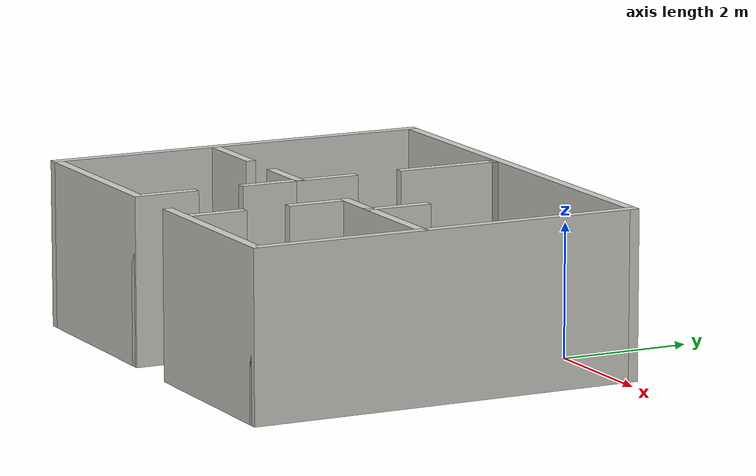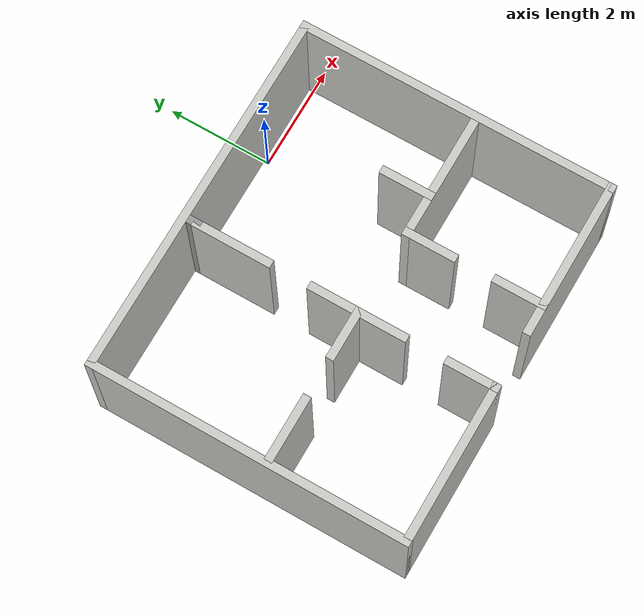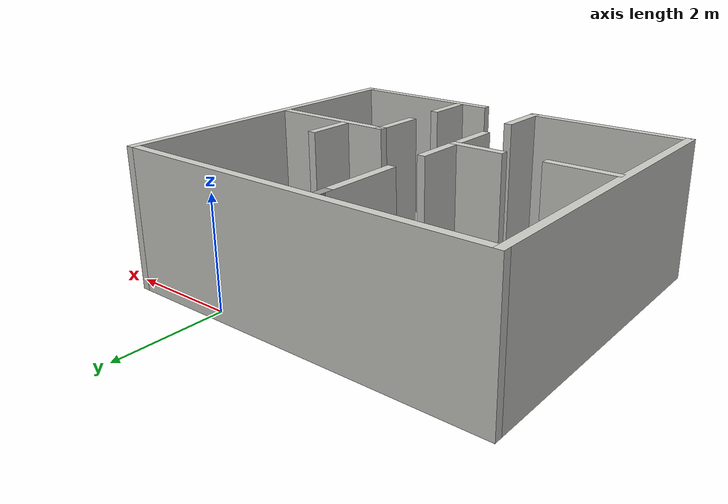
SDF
<?xml version='1.0'?>
<sdf version='1.7'>
  <model name='small_WH'>
    <pose>-1.76525 -2.76682 0 0 -0 0</pose>
    <link name='Wall_0'>
      <collision name='Wall_0_Collision'>
        <geometry>
          <box>
            <size>3 0.15 2.5</size>
          </box>
        </geometry>
        <pose>0 0 1.25 0 -0 0</pose>
      </collision>
      <visual name='Wall_0_Visual'>
        <pose>0 0 1.25 0 -0 0</pose>
        <geometry>
          <box>
            <size>3 0.15 2.5</size>
          </box>
        </geometry>
        <material>
          <script>
            <uri>file://media/materials/scripts/gazebo.material</uri>
            <name>Gazebo/CeilingTiled</name>
          </script>
          <ambient>1 0.764706 0.305882 1</ambient>
        </material>
        <meta>
          <layer>0</layer>
        </meta>
      </visual>
      <pose>-1.95 -2.925 0 0 -0 0</pose>
    </link>
    <link name='Wall_11'>
      <collision name='Wall_11_Collision'>
        <geometry>
          <box>
            <size>1 0.15 2.5</size>
          </box>
        </geometry>
        <pose>0 0 1.25 0 -0 0</pose>
      </collision>
      <visual name='Wall_11_Visual'>
        <pose>0 0 1.25 0 -0 0</pose>
        <geometry>
          <box>
            <size>1 0.15 2.5</size>
          </box>
        </geometry>
        <material>
          <script>
            <uri>file://media/materials/scripts/gazebo.material</uri>
            <name>Gazebo/CeilingTiled</name>
          </script>
          <ambient>1 0.764706 0.305882 1</ambient>
        </material>
        <meta>
          <layer>0</layer>
        </meta>
      </visual>
      <pose>-0.525 -0.8 0 0 -0 1.5708</pose>
    </link>
    <link name='Wall_12'>
      <collision name='Wall_12_Collision'>
        <geometry>
          <box>
            <size>1 0.15 2.5</size>
          </box>
        </geometry>
        <pose>0 0 1.25 0 -0 0</pose>
      </collision>
      <visual name='Wall_12_Visual'>
        <pose>0 0 1.25 0 -0 0</pose>
        <geometry>
          <box>
            <size>1 0.15 2.5</size>
          </box>
        </geometry>
        <material>
          <script>
            <uri>file://media/materials/scripts/gazebo.material</uri>
            <name>Gazebo/CeilingTiled</name>
          </script>
          <ambient>1 0.764706 0.305882 1</ambient>
        </material>
        <meta>
          <layer>0</layer>
        </meta>
      </visual>
      <pose>-0.95 -0.375 0 0 -0 3.14159</pose>
    </link>
    <link name='Wall_14'>
      <collision name='Wall_14_Collision'>
        <geometry>
          <box>
            <size>1.25 0.15 2.5</size>
          </box>
        </geometry>
        <pose>0 0 1.25 0 -0 0</pose>
      </collision>
      <visual name='Wall_14_Visual'>
        <pose>0 0 1.25 0 -0 0</pose>
        <geometry>
          <box>
            <size>1.25 0.15 2.5</size>
          </box>
        </geometry>
        <material>
          <script>
            <uri>file://media/materials/scripts/gazebo.material</uri>
            <name>Gazebo/CeilingTiled</name>
          </script>
          <ambient>1 0.764706 0.305882 1</ambient>
        </material>
        <meta>
          <layer>0</layer>
        </meta>
      </visual>
      <pose>-2.775 -0.375 0 0 -0 3.14159</pose>
    </link>
    <link name='Wall_16'>
      <collision name='Wall_16_Collision'>
        <geometry>
          <box>
            <size>1 0.15 2.5</size>
          </box>
        </geometry>
        <pose>0 0 1.25 0 -0 0</pose>
      </collision>
      <visual name='Wall_16_Visual'>
        <pose>0 0 1.25 0 -0 0</pose>
        <geometry>
          <box>
            <size>1 0.15 2.5</size>
          </box>
        </geometry>
        <material>
          <script>
            <uri>file://media/materials/scripts/gazebo.material</uri>
            <name>Gazebo/CeilingTiled</name>
          </script>
          <ambient>1 0.764706 0.305882 1</ambient>
        </material>
        <meta>
          <layer>0</layer>
        </meta>
      </visual>
      <pose>-0.525 0.05 0 0 -0 1.5708</pose>
    </link>
    <link name='Wall_18'>
      <collision name='Wall_18_Collision'>
        <geometry>
          <box>
            <size>1.5 0.15 2.5</size>
          </box>
        </geometry>
        <pose>0 0 1.25 0 -0 0</pose>
      </collision>
      <visual name='Wall_18_Visual'>
        <pose>0 0 1.25 0 -0 0</pose>
        <geometry>
          <box>
            <size>1.5 0.15 2.5</size>
          </box>
        </geometry>
        <material>
          <script>
            <uri>file://media/materials/scripts/gazebo.material</uri>
            <name>Gazebo/CeilingTiled</name>
          </script>
          <ambient>1 0.764706 0.305882 1</ambient>
        </material>
        <meta>
          <layer>0</layer>
        </meta>
      </visual>
      <pose>-0.525 2 0 0 -0 1.5708</pose>
    </link>
    <link name='Wall_19'>
      <collision name='Wall_19_Collision'>
        <geometry>
          <box>
            <size>0.25 0.15 2.5</size>
          </box>
        </geometry>
        <pose>0 0 1.25 0 -0 0</pose>
      </collision>
      <visual name='Wall_19_Visual'>
        <pose>0 0 1.25 0 -0 0</pose>
        <geometry>
          <box>
            <size>0.25 0.15 2.5</size>
          </box>
        </geometry>
        <material>
          <script>
            <uri>file://media/materials/scripts/gazebo.material</uri>
            <name>Gazebo/Grey</name>
          </script>
          <ambient>1 1 1 1</ambient>
        </material>
        <meta>
          <layer>0</layer>
        </meta>
      </visual>
      <pose>-0.525 2.725 0 0 -0 1.5708</pose>
    </link>
    <link name='Wall_2'>
      <collision name='Wall_2_Collision'>
        <geometry>
          <box>
            <size>3 0.15 2.5</size>
          </box>
        </geometry>
        <pose>0 0 1.25 0 -0 0</pose>
      </collision>
      <visual name='Wall_2_Visual'>
        <pose>0 0 1.25 0 -0 0</pose>
        <geometry>
          <box>
            <size>3 0.15 2.5</size>
          </box>
        </geometry>
        <material>
          <script>
            <uri>file://media/materials/scripts/gazebo.material</uri>
            <name>Gazebo/CeilingTiled</name>
          </script>
          <ambient>1 0.764706 0.305882 1</ambient>
        </material>
        <meta>
          <layer>0</layer>
        </meta>
      </visual>
      <pose>2 -2.925 0 0 -0 0</pose>
    </link>
    <link name='Wall_21'>
      <collision name='Wall_21_Collision'>
        <geometry>
          <box>
            <size>2.5 0.15 2.5</size>
          </box>
        </geometry>
        <pose>0 0 1.25 0 -0 0</pose>
      </collision>
      <visual name='Wall_21_Visual'>
        <pose>0 0 1.25 0 -0 0</pose>
        <geometry>
          <box>
            <size>2.5 0.15 2.5</size>
          </box>
        </geometry>
        <material>
          <script>
            <uri>file://media/materials/scripts/gazebo.material</uri>
            <name>Gazebo/CeilingTiled</name>
          </script>
          <ambient>1 0.764706 0.305882 1</ambient>
        </material>
        <meta>
          <layer>0</layer>
        </meta>
      </visual>
      <pose>2.241 -0.397004 0 0 -0 3.14159</pose>
    </link>
    <link name='Wall_22'>
      <collision name='Wall_22_Collision'>
        <geometry>
          <box>
            <size>1 0.15 2.5</size>
          </box>
        </geometry>
        <pose>0 0 1.25 0 -0 0</pose>
      </collision>
      <visual name='Wall_22_Visual'>
        <pose>0 0 1.25 0 -0 0</pose>
        <geometry>
          <box>
            <size>1 0.15 2.5</size>
          </box>
        </geometry>
        <material>
          <script>
            <uri>file://media/materials/scripts/gazebo.material</uri>
            <name>Gazebo/CeilingTiled</name>
          </script>
          <ambient>1 0.764706 0.305882 1</ambient>
        </material>
        <meta>
          <layer>0</layer>
        </meta>
      </visual>
      <pose>1.066 -0.822004 0 0 -0 -1.5708</pose>
    </link>
    <link name='Wall_24'>
      <collision name='Wall_24_Collision'>
        <geometry>
          <box>
            <size>1 0.15 2.5</size>
          </box>
        </geometry>
        <pose>0 0 1.25 0 -0 0</pose>
      </collision>
      <visual name='Wall_24_Visual'>
        <pose>0 0 1.25 0 -0 0</pose>
        <geometry>
          <box>
            <size>1 0.15 2.5</size>
          </box>
        </geometry>
        <material>
          <script>
            <uri>file://media/materials/scripts/gazebo.material</uri>
            <name>Gazebo/CeilingTiled</name>
          </script>
          <ambient>1 0.764706 0.305882 1</ambient>
        </material>
        <meta>
          <layer>0</layer>
        </meta>
      </visual>
      <pose>1.07922 -2.49555 0 0 -0 -1.5708</pose>
    </link>
    <link name='Wall_26'>
      <collision name='Wall_26_Collision'>
        <geometry>
          <box>
            <size>1 0.15 2.5</size>
          </box>
        </geometry>
        <pose>0 0 1.25 0 -0 0</pose>
      </collision>
      <visual name='Wall_26_Visual'>
        <pose>0 0 1.25 0 -0 0</pose>
        <geometry>
          <box>
            <size>1 0.15 2.5</size>
          </box>
        </geometry>
        <material>
          <script>
            <uri>file://media/materials/scripts/gazebo.material</uri>
            <name>Gazebo/CeilingTiled</name>
          </script>
          <ambient>1 0.764706 0.305882 1</ambient>
        </material>
        <meta>
          <layer>0</layer>
        </meta>
      </visual>
      <pose>1.81629 0.03233 0 0 -0 1.5708</pose>
    </link>
    <link name='Wall_5'>
      <collision name='Wall_5_Collision'>
        <geometry>
          <box>
            <size>6 0.15 2.5</size>
          </box>
        </geometry>
        <pose>0 0 1.25 0 -0 0</pose>
      </collision>
      <visual name='Wall_5_Visual'>
        <pose>0 0 1.25 0 -0 0</pose>
        <geometry>
          <box>
            <size>6 0.15 2.5</size>
          </box>
        </geometry>
        <material>
          <script>
            <uri>file://media/materials/scripts/gazebo.material</uri>
            <name>Gazebo/CeilingTiled</name>
          </script>
          <ambient>1 0.764706 0.305882 1</ambient>
        </material>
        <meta>
          <layer>0</layer>
        </meta>
      </visual>
      <pose>3.425 0 0 0 -0 1.5708</pose>
    </link>
    <link name='Wall_6'>
      <collision name='Wall_6_Collision'>
        <geometry>
          <box>
            <size>7 0.15 2.5</size>
          </box>
        </geometry>
        <pose>0 0 1.25 0 -0 0</pose>
      </collision>
      <visual name='Wall_6_Visual'>
        <pose>0 0 1.25 0 -0 0</pose>
        <geometry>
          <box>
            <size>7 0.15 2.5</size>
          </box>
        </geometry>
        <material>
          <script>
            <uri>file://media/materials/scripts/gazebo.material</uri>
            <name>Gazebo/CeilingTiled</name>
          </script>
          <ambient>1 0.764706 0.305882 1</ambient>
        </material>
        <meta>
          <layer>0</layer>
        </meta>
      </visual>
      <pose>0 2.925 0 0 -0 3.14159</pose>
    </link>
    <link name='Wall_7'>
      <collision name='Wall_7_Collision'>
        <geometry>
          <box>
            <size>6 0.15 2.5</size>
          </box>
        </geometry>
        <pose>0 0 1.25 0 -0 0</pose>
      </collision>
      <visual name='Wall_7_Visual'>
        <pose>0 0 1.25 0 -0 0</pose>
        <geometry>
          <box>
            <size>6 0.15 2.5</size>
          </box>
        </geometry>
        <material>
          <script>
            <uri>file://media/materials/scripts/gazebo.material</uri>
            <name>Gazebo/CeilingTiled</name>
          </script>
          <ambient>1 0.764706 0.305882 1</ambient>
        </material>
        <meta>
          <layer>0</layer>
        </meta>
      </visual>
      <pose>-3.425 0 0 0 -0 -1.5708</pose>
    </link>
    <link name='Wall_9'>
      <collision name='Wall_9_Collision'>
        <geometry>
          <box>
            <size>1 0.15 2.5</size>
          </box>
        </geometry>
        <pose>0 0 1.25 0 -0 0</pose>
      </collision>
      <visual name='Wall_9_Visual'>
        <pose>0 0 1.25 0 -0 0</pose>
        <geometry>
          <box>
            <size>1 0.15 2.5</size>
          </box>
        </geometry>
        <material>
          <script>
            <uri>file://media/materials/scripts/gazebo.material</uri>
            <name>Gazebo/CeilingTiled</name>
          </script>
          <ambient>1 0.764706 0.305882 1</ambient>
        </material>
        <meta>
          <layer>0</layer>
        </meta>
      </visual>
      <pose>-0.525 -2.5 0 0 -0 1.5708</pose>
    </link>
    <static>1</static>
  </model>
</sdf>
